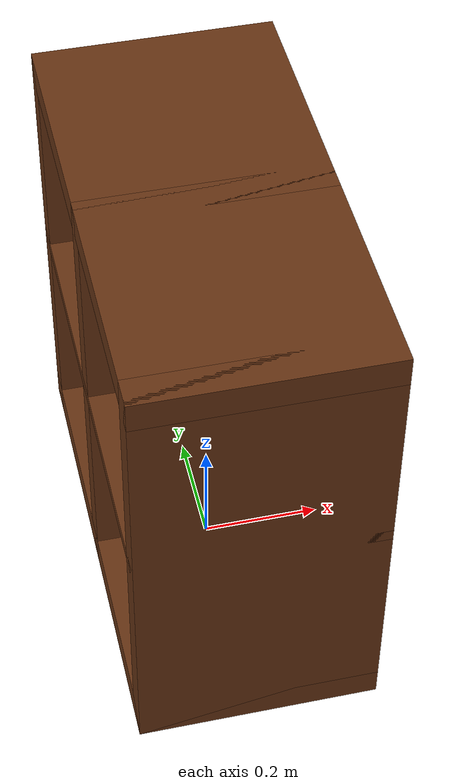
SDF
<?xml version="1.0"?>
<sdf version="1.6">
  <model name="expedit/cabinet">
    <link name="1_link">
      <collision name="1_col">
        <geometry>
          <box>
            <size>0.4 0.79 0.05</size>
          </box>
        </geometry>
      </collision>
      <visual name="1_vis">
        <geometry>
          <box>
            <size>0.4 0.79 0.05</size>
          </box>
        </geometry>
        <material>
          <ambient>0.4 0.2 0.0745 1</ambient>
        </material>
      </visual>
      <pose>0 0 0.025 0 0 0</pose>
    </link>
    <link name="2_link">
      <collision name="2_col">
        <geometry>
          <box>
            <size>0.4 0.79 0.02</size>
          </box>
        </geometry>
      </collision>
      <visual name="2_vis">
        <geometry>
          <box>
            <size>0.4 0.79 0.02</size>
          </box>
        </geometry>
        <material>
          <ambient>0.4 0.2 0.0745 1</ambient>
        </material>
      </visual>
      <pose>0 0 0.41 0 0 0</pose>
    </link>
    <link name="3_link">
      <collision name="3_col">
        <geometry>
          <box>
            <size>0.4 0.79 0.05</size>
          </box>
        </geometry>
      </collision>
      <visual name="3_vis">
        <geometry>
          <box>
            <size>0.4 0.79 0.05</size>
          </box>
        </geometry>
        <material>
          <ambient>0.4 0.2 0.0745 1</ambient>
        </material>
      </visual>
      <pose>0 0 0.765 0 0 0</pose>
    </link>
    <link name="4_link">
      <collision name="4_col">
        <geometry>
          <box>
            <size>0.4 0.05 0.79</size>
          </box>
        </geometry>
      </collision>
      <visual name="4_vis">
        <geometry>
          <box>
            <size>0.4 0.05 0.79</size>
          </box>
        </geometry>
        <material>
          <ambient>0.4 0.2 0.0745 1</ambient>
        </material>
      </visual>
      <pose>0 0.37 0.395 0 0 0</pose>
    </link>
    <link name="5_link">
      <collision name="5_col">
        <geometry>
          <box>
            <size>0.4 0.05 0.79</size>
          </box>
        </geometry>
      </collision>
      <visual name="5_vis">
        <geometry>
          <box>
            <size>0.4 0.05 0.79</size>
          </box>
        </geometry>
        <material>
          <ambient>0.4 0.2 0.0745 1</ambient>
        </material>
      </visual>
      <pose>0 0 0.395 0 0 0</pose>
    </link>
    <link name="6_link">
      <collision name="6_col">
        <geometry>
          <box>
            <size>0.4 0.05 0.79</size>
          </box>
        </geometry>
      </collision>
      <visual name="6_vis">
        <geometry>
          <box>
            <size>0.4 0.05 0.79</size>
          </box>
        </geometry>
        <material>
          <ambient>0.4 0.2 0.0745 1</ambient>
        </material>
      </visual>
      <pose>0 -0.37 0.395 0 0 0</pose>
    </link>
    <static>true</static>
  </model>
</sdf>
